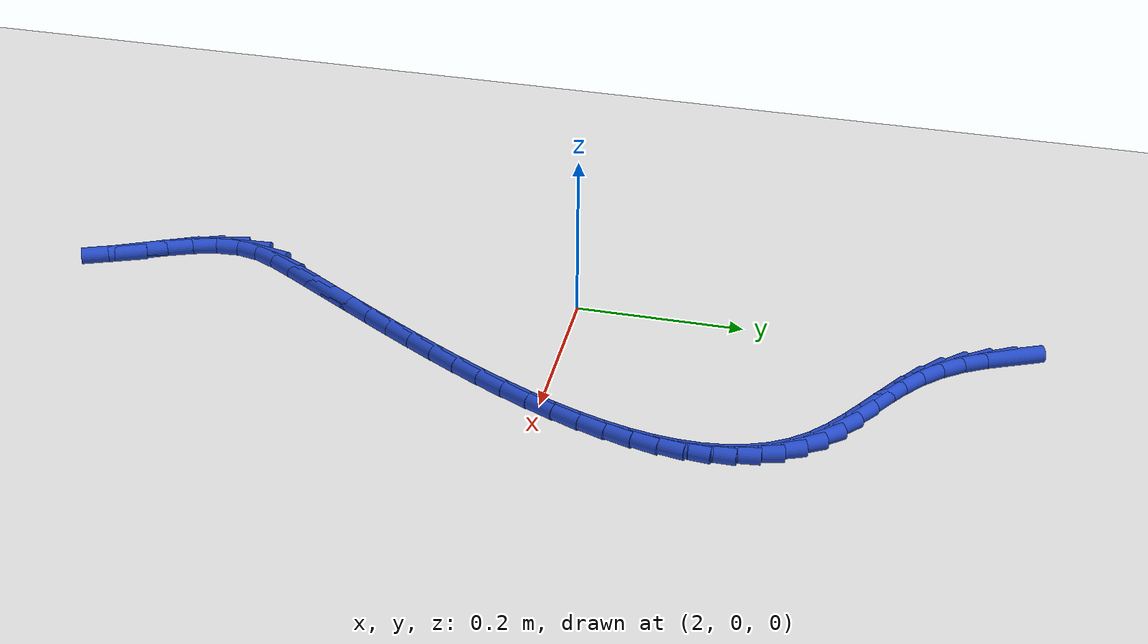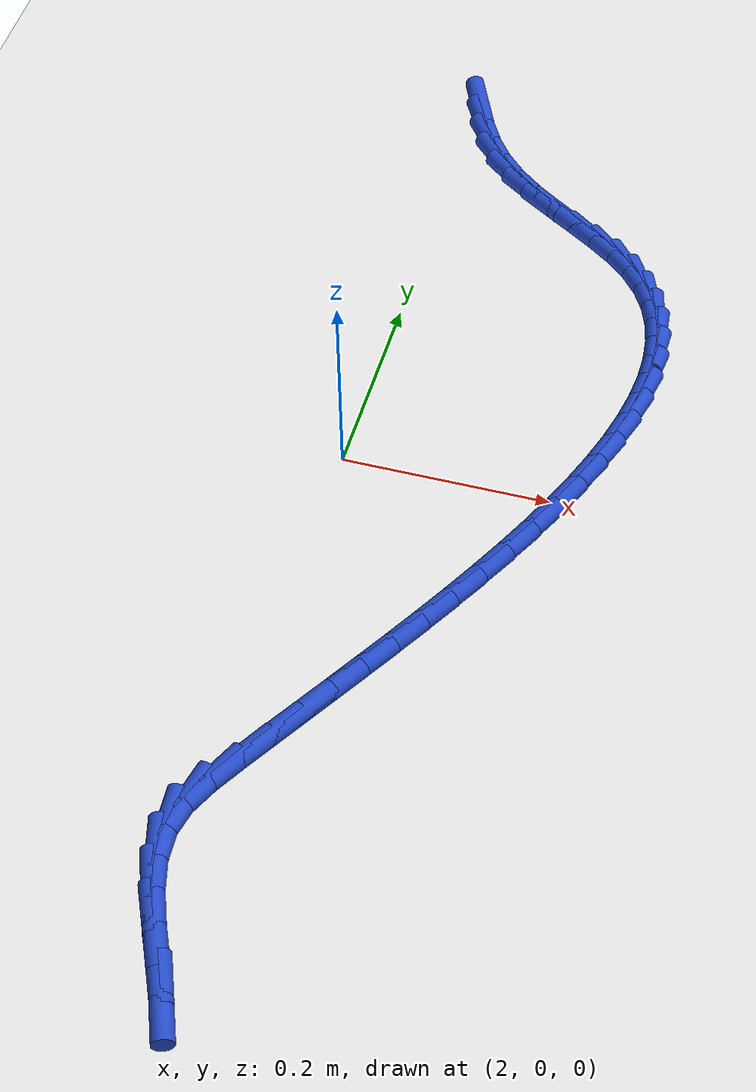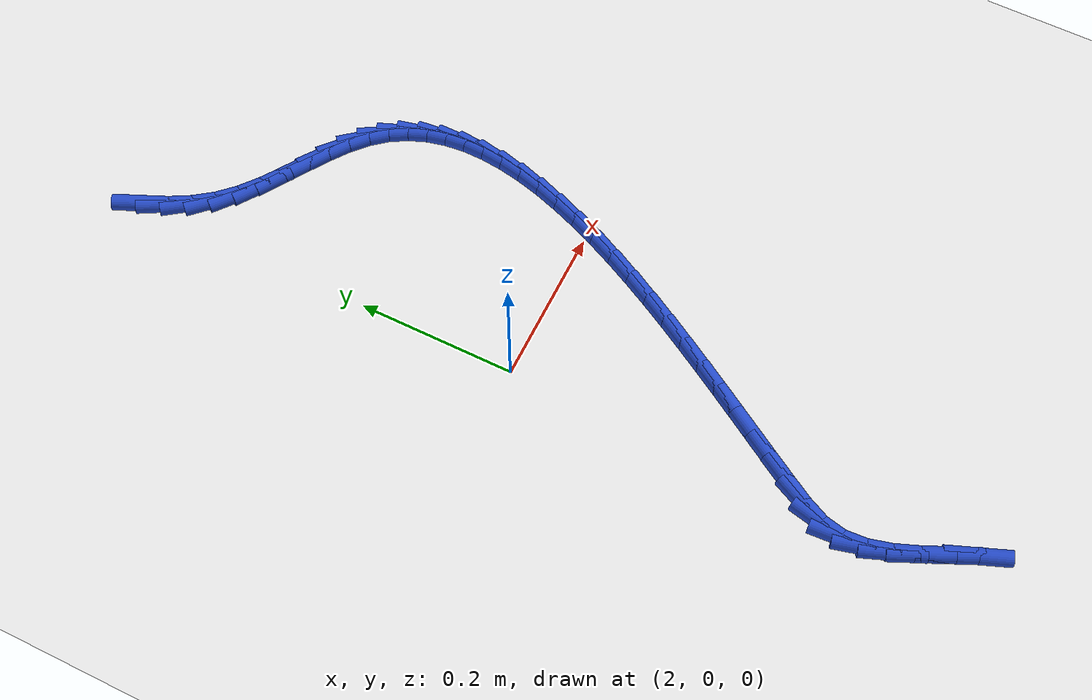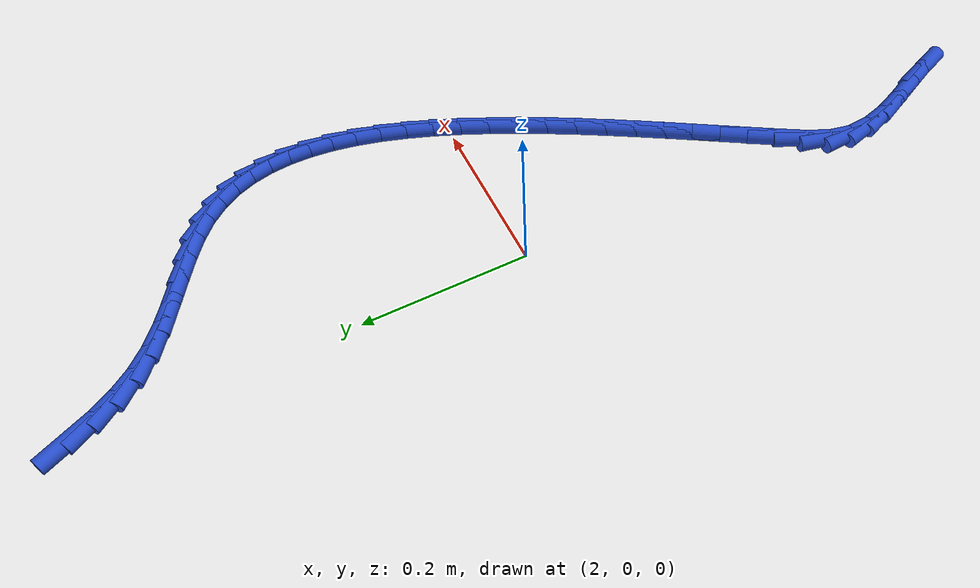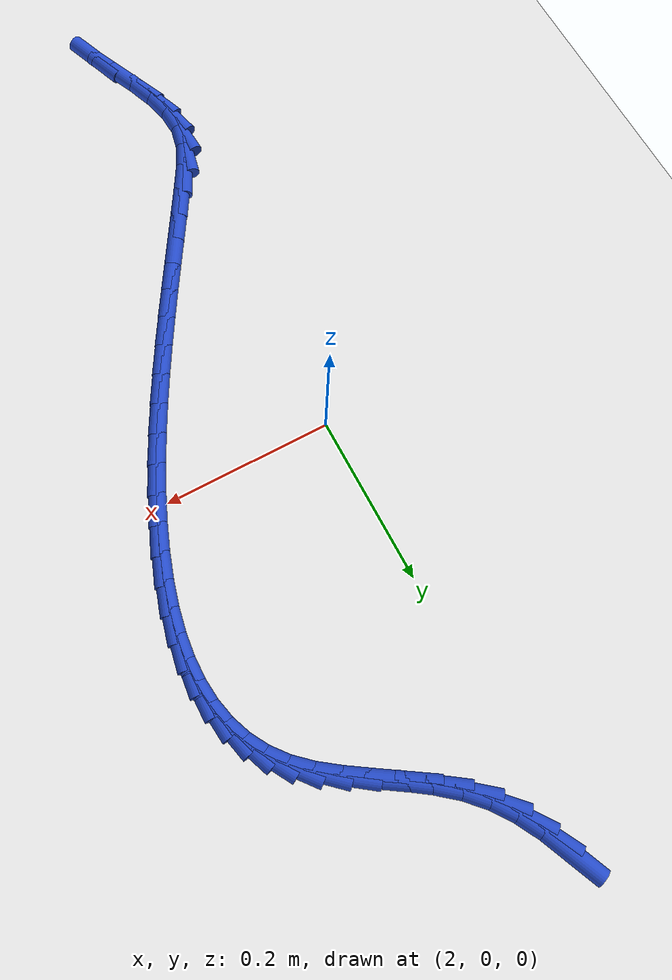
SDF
<sdf version="1.6">
 <world name="default">
  <model name="ground_plane">
   <static>1</static>
   <link name="link">
    <collision name="collision">
     <geometry><plane><normal>0 0 1</normal><size>100 100</size></plane></geometry>
     <surface><friction><ode><mu>100</mu><mu2>50</mu2></ode></friction></surface>
    </collision>
    <visual name="visual">
     <cast_shadows>0</cast_shadows>
     <geometry><plane><normal>0 0 1</normal><size>100 100</size></plane></geometry>
     <material>
      <script><uri>file://media/materials/scripts/gazebo.material</uri><name>Gazebo/WhiteGlow</name></script>
     </material>
    </visual>
   </link>
  </model>
  <model name="line">
   <link name="link_99">
    <pose>2.001788835673495 0.510177622866412 0.01 0 1.57 -1.1565860924440894</pose>
    <collision name="collision">
     <geometry><cylinder><radius>0.01</radius><length>0.08</length></cylinder></geometry>
    </collision>
    <visual name="visual">
     <material>
      <script><name>Gazebo/Blue</name><uri>file://media/materials/scripts/gazebo.material</uri></script>
     </material>
     <geometry><cylinder><radius>0.01</radius><length>0.08</length></cylinder></geometry>
    </visual>
   </link>
   <link name="link_100">
    <pose>2.0137838697827517 0.4828942295163988 0.01 0 1.57 -1.062790316132038</pose>
    <collision name="collision">
     <geometry><cylinder><radius>0.01</radius><length>0.08</length></cylinder></geometry>
    </collision>
    <visual name="visual">
     <material>
      <script><name>Gazebo/Blue</name><uri>file://media/materials/scripts/gazebo.material</uri></script>
     </material>
     <geometry><cylinder><radius>0.01</radius><length>0.08</length></cylinder></geometry>
    </visual>
   </link>
   <link name="link_101">
    <pose>2.028081291013428 0.45721379559434405 0.01 0 1.57 -0.9432101939289731</pose>
    <collision name="collision">
     <geometry><cylinder><radius>0.01</radius><length>0.08</length></cylinder></geometry>
    </collision>
    <visual name="visual">
     <material>
      <script><name>Gazebo/Blue</name><uri>file://media/materials/scripts/gazebo.material</uri></script>
     </material>
     <geometry><cylinder><radius>0.01</radius><length>0.08</length></cylinder></geometry>
    </visual>
   </link>
   <link name="link_102">
    <pose>2.0452452602937496 0.4335531964488907 0.01 0 1.57 -0.8021197244003633</pose>
    <collision name="collision">
     <geometry><cylinder><radius>0.01</radius><length>0.08</length></cylinder></geometry>
    </collision>
    <visual name="visual">
     <material>
      <script><name>Gazebo/Blue</name><uri>file://media/materials/scripts/gazebo.material</uri></script>
     </material>
     <geometry><cylinder><radius>0.01</radius><length>0.08</length></cylinder></geometry>
    </visual>
   </link>
   <link name="link_103">
    <pose>2.0657969358904356 0.41230245401227694 0.01 0 1.57 -0.6785432304810046</pose>
    <collision name="collision">
     <geometry><cylinder><radius>0.01</radius><length>0.08</length></cylinder></geometry>
    </collision>
    <visual name="visual">
     <material>
      <script><name>Gazebo/Blue</name><uri>file://media/materials/scripts/gazebo.material</uri></script>
     </material>
     <geometry><cylinder><radius>0.01</radius><length>0.08</length></cylinder></geometry>
    </visual>
   </link>
   <link name="link_104">
    <pose>2.089369413072048 0.393297030925636 0.01 0 1.57 -0.6020180225623871</pose>
    <collision name="collision">
     <geometry><cylinder><radius>0.01</radius><length>0.08</length></cylinder></geometry>
    </collision>
    <visual name="visual">
     <material>
      <script><name>Gazebo/Blue</name><uri>file://media/materials/scripts/gazebo.material</uri></script>
     </material>
     <geometry><cylinder><radius>0.01</radius><length>0.08</length></cylinder></geometry>
    </visual>
   </link>
   <link name="link_105">
    <pose>2.11476045463235 0.3758507586102133 0.01 0 1.57 -0.5684824302046735</pose>
    <collision name="collision">
     <geometry><cylinder><radius>0.01</radius><length>0.08</length></cylinder></geometry>
    </collision>
    <visual name="visual">
     <material>
      <script><name>Gazebo/Blue</name><uri>file://media/materials/scripts/gazebo.material</uri></script>
     </material>
     <geometry><cylinder><radius>0.01</radius><length>0.08</length></cylinder></geometry>
    </visual>
   </link>
   <link name="link_106">
    <pose>2.14073537919744 0.3592572084216329 0.01 0 1.57 -0.5760024487139879</pose>
    <collision name="collision">
     <geometry><cylinder><radius>0.01</radius><length>0.08</length></cylinder></geometry>
    </collision>
    <visual name="visual">
     <material>
      <script><name>Gazebo/Blue</name><uri>file://media/materials/scripts/gazebo.material</uri></script>
     </material>
     <geometry><cylinder><radius>0.01</radius><length>0.08</length></cylinder></geometry>
    </visual>
   </link>
   <link name="link_107">
    <pose>2.1660595053934206 0.3428099517155198 0.01 0 1.57 -0.6277100258917431</pose>
    <collision name="collision">
     <geometry><cylinder><radius>0.01</radius><length>0.08</length></cylinder></geometry>
    </collision>
    <visual name="visual">
     <material>
      <script><name>Gazebo/Blue</name><uri>file://media/materials/scripts/gazebo.material</uri></script>
     </material>
     <geometry><cylinder><radius>0.01</radius><length>0.08</length></cylinder></geometry>
    </visual>
   </link>
   <link name="link_108">
    <pose>2.189498151846392 0.32580255984749895 0.01 0 1.57 -0.7322969281005207</pose>
    <collision name="collision">
     <geometry><cylinder><radius>0.01</radius><length>0.08</length></cylinder></geometry>
    </collision>
    <visual name="visual">
     <material>
      <script><name>Gazebo/Blue</name><uri>file://media/materials/scripts/gazebo.material</uri></script>
     </material>
     <geometry><cylinder><radius>0.01</radius><length>0.08</length></cylinder></geometry>
    </visual>
   </link>
   <link name="link_109">
    <pose>2.209820967458168 0.30753107756806985 0.01 0 1.57 -0.8819946086764913</pose>
    <collision name="collision">
     <geometry><cylinder><radius>0.01</radius><length>0.08</length></cylinder></geometry>
    </collision>
    <visual name="visual">
     <material>
      <script><name>Gazebo/Blue</name><uri>file://media/materials/scripts/gazebo.material</uri></script>
     </material>
     <geometry><cylinder><radius>0.01</radius><length>0.08</length></cylinder></geometry>
    </visual>
   </link>
   <link name="link_110">
    <pose>2.2262648935865124 0.2875584607536131 0.01 0 1.57 -1.040125593457465</pose>
    <collision name="collision">
     <geometry><cylinder><radius>0.01</radius><length>0.08</length></cylinder></geometry>
    </collision>
    <visual name="visual">
     <material>
      <script><name>Gazebo/Blue</name><uri>file://media/materials/scripts/gazebo.material</uri></script>
     </material>
     <geometry><cylinder><radius>0.01</radius><length>0.08</length></cylinder></geometry>
    </visual>
   </link>
   <link name="link_111">
    <pose>2.2389454350838927 0.2659494888570375 0.01 0 1.57 -1.1947856781527955</pose>
    <collision name="collision">
     <geometry><cylinder><radius>0.01</radius><length>0.08</length></cylinder></geometry>
    </collision>
    <visual name="visual">
     <material>
      <script><name>Gazebo/Blue</name><uri>file://media/materials/scripts/gazebo.material</uri></script>
     </material>
     <geometry><cylinder><radius>0.01</radius><length>0.08</length></cylinder></geometry>
    </visual>
   </link>
   <link name="link_112">
    <pose>2.2480751068151754 0.2428243521372693 0.01 0 1.57 -1.3388694762183455</pose>
    <collision name="collision">
     <geometry><cylinder><radius>0.01</radius><length>0.08</length></cylinder></geometry>
    </collision>
    <visual name="visual">
     <material>
      <script><name>Gazebo/Blue</name><uri>file://media/materials/scripts/gazebo.material</uri></script>
     </material>
     <geometry><cylinder><radius>0.01</radius><length>0.08</length></cylinder></geometry>
    </visual>
   </link>
   <link name="link_113">
    <pose>2.253866423645226 0.218303240853235 0.01 0 1.57 -1.467836208780161</pose>
    <collision name="collision">
     <geometry><cylinder><radius>0.01</radius><length>0.08</length></cylinder></geometry>
    </collision>
    <visual name="visual">
     <material>
      <script><name>Gazebo/Blue</name><uri>file://media/materials/scripts/gazebo.material</uri></script>
     </material>
     <geometry><cylinder><radius>0.01</radius><length>0.08</length></cylinder></geometry>
    </visual>
   </link>
   <link name="link_114">
    <pose>2.2565319004389073 0.19250634526386076 0.01 0 1.57 1.561600835196327</pose>
    <collision name="collision">
     <geometry><cylinder><radius>0.01</radius><length>0.08</length></cylinder></geometry>
    </collision>
    <visual name="visual">
     <material>
      <script><name>Gazebo/Blue</name><uri>file://media/materials/scripts/gazebo.material</uri></script>
     </material>
     <geometry><cylinder><radius>0.01</radius><length>0.08</length></cylinder></geometry>
    </visual>
   </link>
   <link name="link_115">
    <pose>2.2562840520610843 0.16555385562807287 0.01 0 1.57 1.4658287592338488</pose>
    <collision name="collision">
     <geometry><cylinder><radius>0.01</radius><length>0.08</length></cylinder></geometry>
    </collision>
    <visual name="visual">
     <material>
      <script><name>Gazebo/Blue</name><uri>file://media/materials/scripts/gazebo.material</uri></script>
     </material>
     <geometry><cylinder><radius>0.01</radius><length>0.08</length></cylinder></geometry>
    </visual>
   </link>
   <link name="link_116">
    <pose>2.253335393376623 0.13756596220479775 0.01 0 1.57 1.3848594704706108</pose>
    <collision name="collision">
     <geometry><cylinder><radius>0.01</radius><length>0.08</length></cylinder></geometry>
    </collision>
    <visual name="visual">
     <material>
      <script><name>Gazebo/Blue</name><uri>file://media/materials/scripts/gazebo.material</uri></script>
     </material>
     <geometry><cylinder><radius>0.01</radius><length>0.08</length></cylinder></geometry>
    </visual>
   </link>
   <link name="link_117">
    <pose>2.247898439250387 0.10866285525296165 0.01 0 1.57 1.3167051831085297</pose>
    <collision name="collision">
     <geometry><cylinder><radius>0.01</radius><length>0.08</length></cylinder></geometry>
    </collision>
    <visual name="visual">
     <material>
      <script><name>Gazebo/Blue</name><uri>file://media/materials/scripts/gazebo.material</uri></script>
     </material>
     <geometry><cylinder><radius>0.01</radius><length>0.08</length></cylinder></geometry>
    </visual>
   </link>
   <link name="link_118">
    <pose>2.2401857045472413 0.07896472503149088 0.01 0 1.57 1.2594023387698805</pose>
    <collision name="collision">
     <geometry><cylinder><radius>0.01</radius><length>0.08</length></cylinder></geometry>
    </collision>
    <visual name="visual">
     <material>
      <script><name>Gazebo/Blue</name><uri>file://media/materials/scripts/gazebo.material</uri></script>
     </material>
     <geometry><cylinder><radius>0.01</radius><length>0.08</length></cylinder></geometry>
    </visual>
   </link>
   <link name="link_119">
    <pose>2.2304097041320508 0.04859176179931178 0.01 0 1.57 1.2112067008276166</pose>
    <collision name="collision">
     <geometry><cylinder><radius>0.01</radius><length>0.08</length></cylinder></geometry>
    </collision>
    <visual name="visual">
     <material>
      <script><name>Gazebo/Blue</name><uri>file://media/materials/scripts/gazebo.material</uri></script>
     </material>
     <geometry><cylinder><radius>0.01</radius><length>0.08</length></cylinder></geometry>
    </visual>
   </link>
   <link name="link_120">
    <pose>2.218782952869681 0.017664155815351135 0.01 0 1.57 1.170652384769836</pose>
    <collision name="collision">
     <geometry><cylinder><radius>0.01</radius><length>0.08</length></cylinder></geometry>
    </collision>
    <visual name="visual">
     <material>
      <script><name>Gazebo/Blue</name><uri>file://media/materials/scripts/gazebo.material</uri></script>
     </material>
     <geometry><cylinder><radius>0.01</radius><length>0.08</length></cylinder></geometry>
    </visual>
   </link>
   <link name="link_121">
    <pose>2.2055179656249946 -0.013697902661465686 0.01 0 1.57 1.1365457500907354</pose>
    <collision name="collision">
     <geometry><cylinder><radius>0.01</radius><length>0.08</length></cylinder></geometry>
    </collision>
    <visual name="visual">
     <material>
      <script><name>Gazebo/Blue</name><uri>file://media/materials/scripts/gazebo.material</uri></script>
     </material>
     <geometry><cylinder><radius>0.01</radius><length>0.08</length></cylinder></geometry>
    </visual>
   </link>
   <link name="link_122">
    <pose>2.1908272572628578 -0.04537422337221189 0.01 0 1.57 1.1079342495802318</pose>
    <collision name="collision">
     <geometry><cylinder><radius>0.01</radius><length>0.08</length></cylinder></geometry>
    </collision>
    <visual name="visual">
     <material>
      <script><name>Gazebo/Blue</name><uri>file://media/materials/scripts/gazebo.material</uri></script>
     </material>
     <geometry><cylinder><radius>0.01</radius><length>0.08</length></cylinder></geometry>
    </visual>
   </link>
   <link name="link_123">
    <pose>2.174923342648136 -0.07724461605796114 0.01 0 1.57 1.0840699496877138</pose>
    <collision name="collision">
     <geometry><cylinder><radius>0.01</radius><length>0.08</length></cylinder></geometry>
    </collision>
    <visual name="visual">
     <material>
      <script><name>Gazebo/Blue</name><uri>file://media/materials/scripts/gazebo.material</uri></script>
     </material>
     <geometry><cylinder><radius>0.01</radius><length>0.08</length></cylinder></geometry>
    </visual>
   </link>
   <link name="link_124">
    <pose>2.158018736645692 -0.1091888904597872 0.01 0 1.57 1.0643762660441545</pose>
    <collision name="collision">
     <geometry><cylinder><radius>0.01</radius><length>0.08</length></cylinder></geometry>
    </collision>
    <visual name="visual">
     <material>
      <script><name>Gazebo/Blue</name><uri>file://media/materials/scripts/gazebo.material</uri></script>
     </material>
     <geometry><cylinder><radius>0.01</radius><length>0.08</length></cylinder></geometry>
    </visual>
   </link>
   <link name="link_125">
    <pose>2.1403259541203914 -0.1410868563187637 0.01 0 1.57 1.048421022280617</pose>
    <collision name="collision">
     <geometry><cylinder><radius>0.01</radius><length>0.08</length></cylinder></geometry>
    </collision>
    <visual name="visual">
     <material>
      <script><name>Gazebo/Blue</name><uri>file://media/materials/scripts/gazebo.material</uri></script>
     </material>
     <geometry><cylinder><radius>0.01</radius><length>0.08</length></cylinder></geometry>
    </visual>
   </link>
   <link name="link_126">
    <pose>2.1220575099371 -0.1728183233759643 0.01 0 1.57 1.0358966019584603</pose>
    <collision name="collision">
     <geometry><cylinder><radius>0.01</radius><length>0.08</length></cylinder></geometry>
    </collision>
    <visual name="visual">
     <material>
      <script><name>Gazebo/Blue</name><uri>file://media/materials/scripts/gazebo.material</uri></script>
     </material>
     <geometry><cylinder><radius>0.01</radius><length>0.08</length></cylinder></geometry>
    </visual>
   </link>
   <link name="link_127">
    <pose>2.1034259189606805 -0.20426310137246273 0.01 0 1.57 1.0266071887104655</pose>
    <collision name="collision">
     <geometry><cylinder><radius>0.01</radius><length>0.08</length></cylinder></geometry>
    </collision>
    <visual name="visual">
     <material>
      <script><name>Gazebo/Blue</name><uri>file://media/materials/scripts/gazebo.material</uri></script>
     </material>
     <geometry><cylinder><radius>0.01</radius><length>0.08</length></cylinder></geometry>
    </visual>
   </link>
   <link name="link_128">
    <pose>2.0846436960559993 -0.2353010000493327 0.01 0 1.57 1.0204631015089864</pose>
    <collision name="collision">
     <geometry><cylinder><radius>0.01</radius><length>0.08</length></cylinder></geometry>
    </collision>
    <visual name="visual">
     <material>
      <script><name>Gazebo/Blue</name><uri>file://media/materials/scripts/gazebo.material</uri></script>
     </material>
     <geometry><cylinder><radius>0.01</radius><length>0.08</length></cylinder></geometry>
    </visual>
   </link>
   <link name="link_129">
    <pose>2.06592335608792 -0.2658118291476478 0.01 0 1.57 1.0174826967868915</pose>
    <collision name="collision">
     <geometry><cylinder><radius>0.01</radius><length>0.08</length></cylinder></geometry>
    </collision>
    <visual name="visual">
     <material>
      <script><name>Gazebo/Blue</name><uri>file://media/materials/scripts/gazebo.material</uri></script>
     </material>
     <geometry><cylinder><radius>0.01</radius><length>0.08</length></cylinder></geometry>
    </visual>
   </link>
   <link name="link_130">
    <pose>2.0474774139213086 -0.2956753984084817 0.01 0 1.57 1.017803155688661</pose>
    <collision name="collision">
     <geometry><cylinder><radius>0.01</radius><length>0.08</length></cylinder></geometry>
    </collision>
    <visual name="visual">
     <material>
      <script><name>Gazebo/Blue</name><uri>file://media/materials/scripts/gazebo.material</uri></script>
     </material>
     <geometry><cylinder><radius>0.01</radius><length>0.08</length></cylinder></geometry>
    </visual>
   </link>
   <link name="link_131">
    <pose>2.0295183844210287 -0.3247715175729083 0.01 0 1.57 1.0217028245414264</pose>
    <collision name="collision">
     <geometry><cylinder><radius>0.01</radius><length>0.08</length></cylinder></geometry>
    </collision>
    <visual name="visual">
     <material>
      <script><name>Gazebo/Blue</name><uri>file://media/materials/scripts/gazebo.material</uri></script>
     </material>
     <geometry><cylinder><radius>0.01</radius><length>0.08</length></cylinder></geometry>
    </visual>
   </link>
   <link name="link_132">
    <pose>2.0122587824519447 -0.352979996382001 0.01 0 1.57 1.0345985760793524</pose>
    <collision name="collision">
     <geometry><cylinder><radius>0.01</radius><length>0.08</length></cylinder></geometry>
    </collision>
    <visual name="visual">
     <material>
      <script><name>Gazebo/Blue</name><uri>file://media/materials/scripts/gazebo.material</uri></script>
     </material>
     <geometry><cylinder><radius>0.01</radius><length>0.08</length></cylinder></geometry>
    </visual>
   </link>
   <link name="link_133">
    <pose>1.996063961079458 -0.38023148563248904 0.01 0 1.57 1.1245041838409269</pose>
    <collision name="collision">
     <geometry><cylinder><radius>0.01</radius><length>0.08</length></cylinder></geometry>
    </collision>
    <visual name="visual">
     <material>
      <script><name>Gazebo/Blue</name><uri>file://media/materials/scripts/gazebo.material</uri></script>
     </material>
     <geometry><cylinder><radius>0.01</radius><length>0.08</length></cylinder></geometry>
    </visual>
   </link>
   <link name="link_134">
    <pose>1.9832111715700003 -0.4070926219054507 0.01 0 1.57 1.3545591396862606</pose>
    <collision name="collision">
     <geometry><cylinder><radius>0.01</radius><length>0.08</length></cylinder></geometry>
    </collision>
    <visual name="visual">
     <material>
      <script><name>Gazebo/Blue</name><uri>file://media/materials/scripts/gazebo.material</uri></script>
     </material>
     <geometry><cylinder><radius>0.01</radius><length>0.08</length></cylinder></geometry>
    </visual>
   </link>
   <link name="link_135">
    <pose>1.9771816854546818 -0.43454033022486865 0.01 0 1.57 -1.5100860416712043</pose>
    <collision name="collision">
     <geometry><cylinder><radius>0.01</radius><length>0.08</length></cylinder></geometry>
    </collision>
    <visual name="visual">
     <material>
      <script><name>Gazebo/Blue</name><uri>file://media/materials/scripts/gazebo.material</uri></script>
     </material>
     <geometry><cylinder><radius>0.01</radius><length>0.08</length></cylinder></geometry>
    </visual>
   </link>
   <link name="link_136">
    <pose>1.978909409124373 -0.46296385843620314 0.01 0 1.57 -1.314463010705313</pose>
    <collision name="collision">
     <geometry><cylinder><radius>0.01</radius><length>0.08</length></cylinder></geometry>
    </collision>
    <visual name="visual">
     <material>
      <script><name>Gazebo/Blue</name><uri>file://media/materials/scripts/gazebo.material</uri></script>
     </material>
     <geometry><cylinder><radius>0.01</radius><length>0.08</length></cylinder></geometry>
    </visual>
   </link>
   <link name="link_137">
    <pose>1.9865481541988015 -0.4921083408806428 0.01 0 1.57 -1.1980749121366845</pose>
    <collision name="collision">
     <geometry><cylinder><radius>0.01</radius><length>0.08</length></cylinder></geometry>
    </collision>
    <visual name="visual">
     <material>
      <script><name>Gazebo/Blue</name><uri>file://media/materials/scripts/gazebo.material</uri></script>
     </material>
     <geometry><cylinder><radius>0.01</radius><length>0.08</length></cylinder></geometry>
    </visual>
   </link>
   <link name="link_138">
    <pose>1.9981132636294054 -0.5216868304250001 0.01 0 1.57 -1.1443025761558876</pose>
    <collision name="collision">
     <geometry><cylinder><radius>0.01</radius><length>0.08</length></cylinder></geometry>
    </collision>
    <visual name="visual">
     <material>
      <script><name>Gazebo/Blue</name><uri>file://media/materials/scripts/gazebo.material</uri></script>
     </material>
     <geometry><cylinder><radius>0.01</radius><length>0.08</length></cylinder></geometry>
    </visual>
   </link>
   <link name="link_139">
    <pose>2.01162008036762 -0.551412379936087 0.01 0 1.57 -1.1437252433931662</pose>
    <collision name="collision">
     <geometry><cylinder><radius>0.01</radius><length>0.08</length></cylinder></geometry>
    </collision>
    <visual name="visual">
     <material>
      <script><name>Gazebo/Blue</name><uri>file://media/materials/scripts/gazebo.material</uri></script>
     </material>
     <geometry><cylinder><radius>0.01</radius><length>0.08</length></cylinder></geometry>
    </visual>
   </link>
   <link name="link_140">
    <pose>2.025083947364882 -0.5809980422807158 0.01 0 1.57 -1.1970271309011755</pose>
    <collision name="collision">
     <geometry><cylinder><radius>0.01</radius><length>0.08</length></cylinder></geometry>
    </collision>
    <visual name="visual">
     <material>
      <script><name>Gazebo/Blue</name><uri>file://media/materials/scripts/gazebo.material</uri></script>
     </material>
     <geometry><cylinder><radius>0.01</radius><length>0.08</length></cylinder></geometry>
    </visual>
   </link>
  </model>
 </world>
</sdf>
